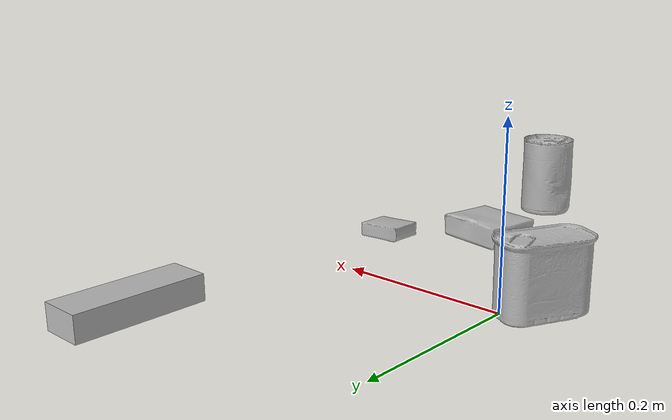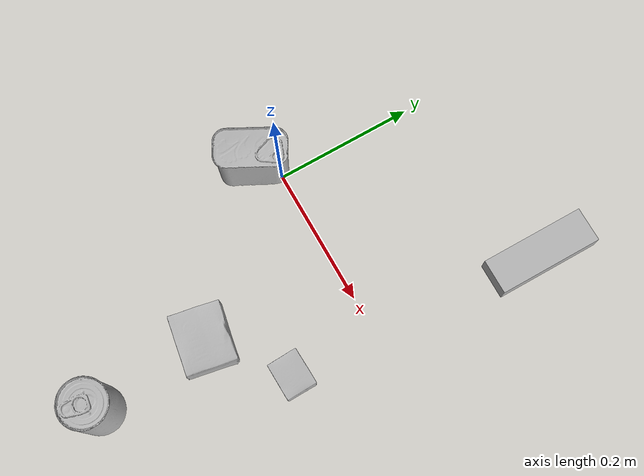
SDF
<sdf version="1.4">
  <world name="default">
    <light name="light1" type="point">
      <pose>0 0 1 0 0 0</pose>
      <diffuse>3 3 3 1</diffuse>
      <specular>3 3 3 1</specular>
    </light>
    <light name="light2" type="point">
      <pose>0 0.5 2 0 0 0</pose>
      <diffuse>1 1 1 1</diffuse>
      <specular>1 1 1 1</specular>
    </light>
    <light name="light3" type="point">
      <pose>0 0.5 2 0 0 0</pose>
      <diffuse>3 3 3 1</diffuse>
      <specular>3 3 3 1</specular>
    </light>
    <scene>
      <ambient>0.7 0.7 0.7</ambient>
    </scene>
    <model name="box1">
      <link name="link_box1">
        <collision name="default">
          <geometry>
            <mesh>
              <uri>model://pudding_box/collision_meshes/collision.obj</uri>
              <scale>0.5 0.5 0.5</scale>
            </mesh>
          </geometry>
          <surface>
            <friction>
              <ode>
                <mu>0.5</mu>
                <mu2>0.5</mu2>
              </ode>
            </friction>
          <contact>
        <ode>
            <max_vel>0</max_vel>
            <min_depth>0.0001</min_depth>
            <kp>1e8</kp>
        </ode>
    </contact></surface>
        </collision>
        <visual name="default">
          <geometry>
            <mesh>
              <uri>model://pudding_box/visual_meshes/visual.dae</uri>
              <scale>0.5 0.5 0.5</scale>
            </mesh>
          </geometry>
        </visual>
        <inertial>
          <mass>0.040720973163843155</mass>
          <pose>0.00024474109522998333 0.0004033942532259971 -0.0002594413817860186 0.005213101818388509 -0.006603799159636292 0.020079815843731863</pose>
          <inertia>
            <ixx>1.1508242e-05</ixx>
            <iyy>7.742825e-06</iyy>
            <izz>1.6994923e-05</izz>
            <ixy>0</ixy>
            <ixz>0</ixz>
            <iyz>0</iyz>
          </inertia>
        </inertial>
      </link>
      <pose>0.2504117786884308 -0.12420940399169922 0.009862901642918587 0.02234853559010432 -0.011391689296926693 1.5977966242774653</pose>
    </model>
    <model name="box2">
      <link name="link_box2">
        <collision name="default">
          <geometry>
            <mesh>
              <uri>model://jenga/collision_meshes/collision.obj</uri>
              <scale>1.0 1.0 1.0</scale>
            </mesh>
          </geometry>
          <surface>
            <friction>
              <ode>
                <mu>0.5</mu>
                <mu2>0.5</mu2>
              </ode>
            </friction>
          <contact>
        <ode>
            <max_vel>0</max_vel>
            <min_depth>0.0001</min_depth>
            <kp>1e8</kp>
        </ode>
    </contact></surface>
        </collision>
        <visual name="default">
          <geometry>
            <mesh>
              <uri>model://jenga/visual_meshes/visual.dae</uri>
              <scale>1.0 1.0 1.0</scale>
            </mesh>
          </geometry>
        </visual>
        <inertial>
          <mass>0.2260044664144516</mass>
          <pose>-2.502855807051674e-07 -0.00010250010382151231 -4.0923401684267446e-05 0.0 -7.34215461761844e-07 0.0</pose>
          <inertia>
            <ixx>6.254092e-05</ixx>
            <iyy>0.00042377558</iyy>
            <izz>0.00045241645</izz>
            <ixy>0</ixy>
            <ixz>0</ixz>
            <iyz>0</iyz>
          </inertia>
        </inertial>
      </link>
      <pose>0.2741662561893463 0.24913112819194794 0.014999997802078724 1.4656942442996231e-08 1.5342009390387633e-11 -1.579306895934252</pose>
    </model>
    <model name="box3">
      <link name="link_box3">
        <collision name="default">
          <geometry>
            <mesh>
              <uri>model://gelatin_box/collision_meshes/collision.obj</uri>
              <scale>1.0 1.0 1.0</scale>
            </mesh>
          </geometry>
          <surface>
            <friction>
              <ode>
                <mu>0.5</mu>
                <mu2>0.5</mu2>
              </ode>
            </friction>
          <contact>
        <ode>
            <max_vel>0</max_vel>
            <min_depth>0.0001</min_depth>
            <kp>1e8</kp>
        </ode>
    </contact></surface>
        </collision>
        <visual name="default">
          <geometry>
            <mesh>
              <uri>model://gelatin_box/visual_meshes/visual.dae</uri>
              <scale>1.0 1.0 1.0</scale>
            </mesh>
          </geometry>
        </visual>
        <inertial>
          <mass>0.21249663829803467</mass>
          <pose>0.000431961816502735 0.00011156871914863586 -0.0003640321083366871 -0.0010503720865678746 -0.004755816824885886 0.016440563196489677</pose>
          <inertia>
            <ixx>0.00015000527</ixx>
            <iyy>0.000107147986</iyy>
            <izz>0.00022834145</izz>
            <ixy>0</ixy>
            <ixz>0</ixz>
            <iyz>0</iyz>
          </inertia>
        </inertial>
      </link>
      <pose>0.15165846049785614 -0.20342032611370087 0.015168317593634129 0.005597462884709363 -0.007304561992312346 1.3794651597885599</pose>
    </model>
    <model name="can1">
      <link name="link_can1">
        <collision name="default">
          <geometry>
            <mesh>
              <uri>model://tomato_soup_can/collision_meshes/collision.obj</uri>
              <scale>1.0 1.0 1.0</scale>
            </mesh>
          </geometry>
          <surface>
            <friction>
              <ode>
                <mu>0.5</mu>
                <mu2>0.5</mu2>
              </ode>
            </friction>
          <contact>
        <ode>
            <max_vel>0</max_vel>
            <min_depth>0.0001</min_depth>
            <kp>1e8</kp>
        </ode>
    </contact></surface>
        </collision>
        <visual name="default">
          <geometry>
            <mesh>
              <uri>model://tomato_soup_can/visual_meshes/visual.dae</uri>
              <scale>1.0 1.0 1.0</scale>
            </mesh>
          </geometry>
        </visual>
        <inertial>
          <mass>0.23179346323013306</mass>
          <pose>0.00012652273289859295 0.00010805525380419567 -0.0017973976209759712 0.00702006934742656 0.00042299045868732465 -0.009902874376192201</pose>
          <inertia>
            <ixx>0.0002541419</ixx>
            <iyy>0.00025267305</iyy>
            <izz>0.00013171937</izz>
            <ixy>0</ixy>
            <ixz>0</ixz>
            <iyz>0</iyz>
          </inertia>
        </inertial>
      </link>
      <pose>0.16526766121387482 -0.36531636118888855 0.05127400532364845 -7.429632706474474e-07 -9.081043121888011e-07 -0.43032436279235525</pose>
    </model>
    <model name="can2">
      <link name="link_can2">
        <collision name="default">
          <geometry>
            <mesh>
              <uri>model://potted_meat_can/collision_meshes/collision.obj</uri>
              <scale>1.0 1.0 1.0</scale>
            </mesh>
          </geometry>
          <surface>
            <friction>
              <ode>
                <mu>0.5</mu>
                <mu2>0.5</mu2>
              </ode>
            </friction>
          <contact>
        <ode>
            <max_vel>0</max_vel>
            <min_depth>0.0001</min_depth>
            <kp>1e8</kp>
        </ode>
    </contact></surface>
        </collision>
        <visual name="default">
          <geometry>
            <mesh>
              <uri>model://potted_meat_can/visual_meshes/visual.dae</uri>
              <scale>1.0 1.0 1.0</scale>
            </mesh>
          </geometry>
        </visual>
        <inertial>
          <mass>0.3195023536682129</mass>
          <pose>0.00022888148669153452 -5.98910846747458e-05 -0.0006367437308654189 -0.028093352727545092 -0.0072326048209280834 0.015406269022640915</pose>
          <inertia>
            <ixx>0.00041100648</ixx>
            <iyy>0.0002497176</iyy>
            <izz>0.00029892896</izz>
            <ixy>0</ixy>
            <ixz>0</ixz>
            <iyz>0</iyz>
          </inertia>
        </inertial>
      </link>
      <pose>-0.03098108246922493 -0.02688039466738701 0.04212801530957222 1.764413086942578e-08 -5.172341258031358e-07 2.645002423132515</pose>
    </model>
  <physics type="ode">
      <max_contacts>50</max_contacts>
      <ode>
        <solver>
          <type>quick</type>
          <iters>75</iters>
        </solver>
        <constraints>
          <contact_max_correcting_vel>0</contact_max_correcting_vel>
          <contact_surface_layer>0</contact_surface_layer>
        </constraints>
      </ode>
    </physics></world>
</sdf>
